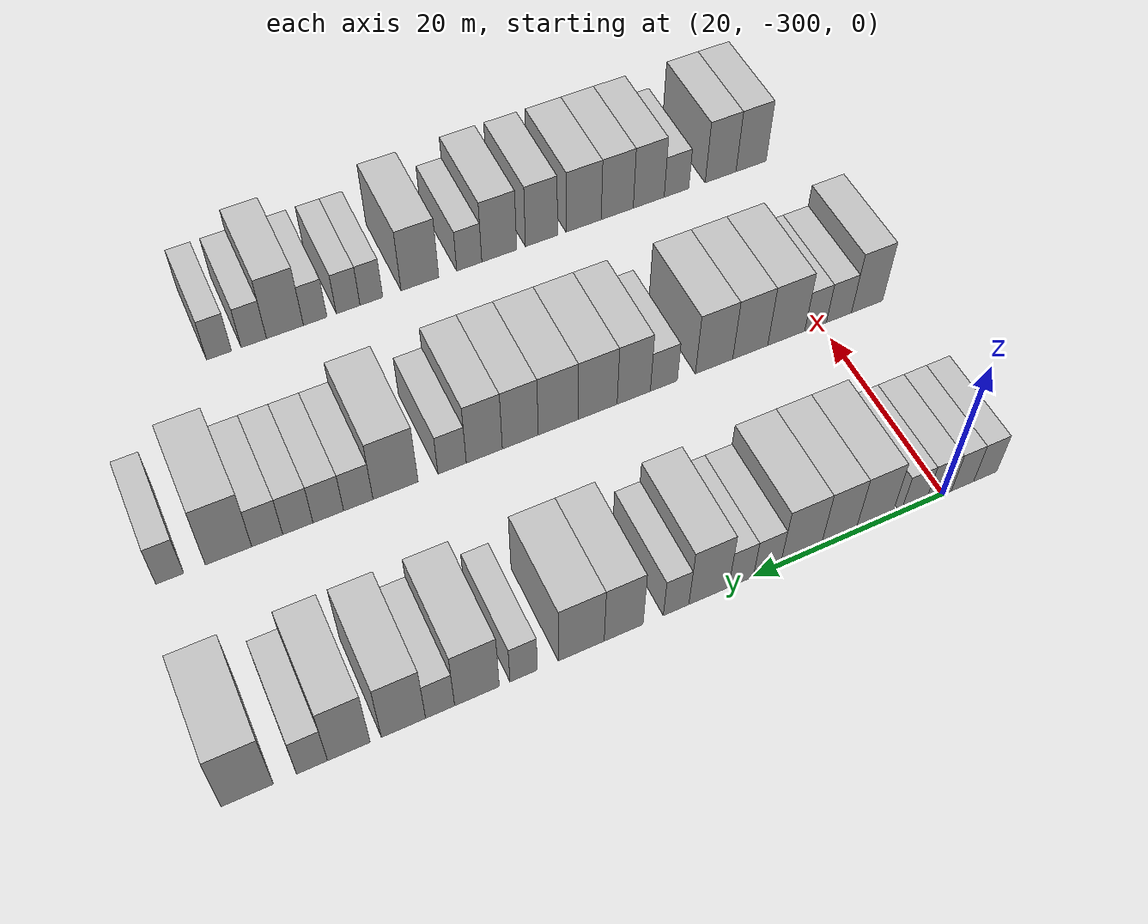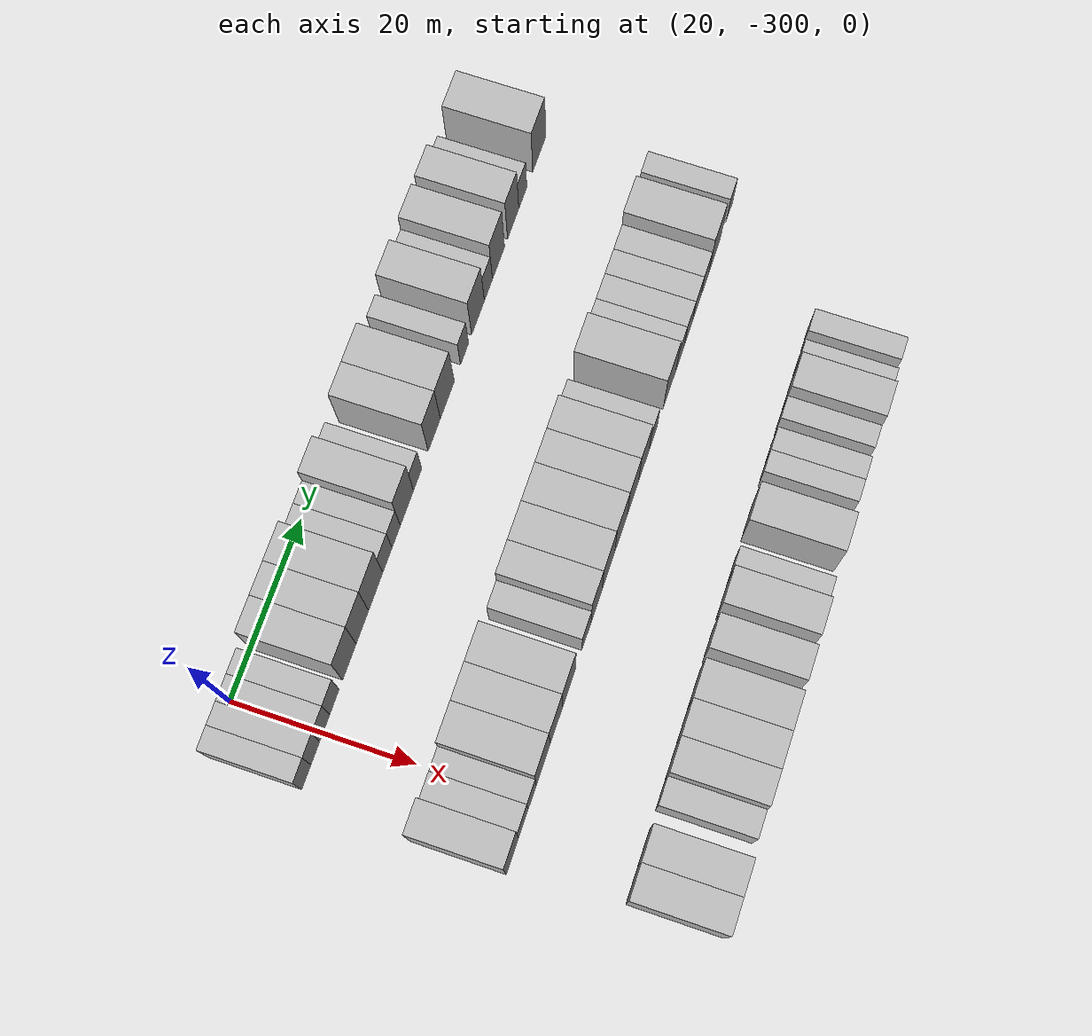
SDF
<sdf version="1.6">
 <world name="default">
  <model name="building_20">
   <static>1</static>
   <pose>25.0000 -304.6713 0 0.000000 0.000000 0.000000</pose>
   <link name="link">
    <pose>0 0 3.00 0 0 0</pose>
    <collision name="collision"><geometry><box><size>10.0000 2.5797 6.0000</size></box></geometry></collision>
    <visual name="visual">
     <cast_shadows>0</cast_shadows>
     <geometry><box><size>10.0000 2.5797 6.0000</size></box></geometry>
     <material>
      <script>
       <uri>model://HANNAS_wall/materials/scripts</uri>
       <uri>model://HANNAS_wall/materials/textures</uri>
       <name>vrc/HANNAS_wall</name>
      </script>
     </material>
    </visual>
   </link>
  </model>
  <model name="building_21">
   <static>1</static>
   <pose>25.0000 -302.1477 0 0.000000 0.000000 0.000000</pose>
   <link name="link">
    <pose>0 0 3.00 0 0 0</pose>
    <collision name="collision"><geometry><box><size>10.0000 2.4675 6.0000</size></box></geometry></collision>
    <visual name="visual">
     <cast_shadows>0</cast_shadows>
     <geometry><box><size>10.0000 2.4675 6.0000</size></box></geometry>
     <material>
      <script>
       <uri>model://HANNAS_wall/materials/scripts</uri>
       <uri>model://HANNAS_wall/materials/textures</uri>
       <name>vrc/HANNAS_wall</name>
      </script>
     </material>
    </visual>
   </link>
  </model>
  <model name="building_22">
   <static>1</static>
   <pose>25.0000 -299.4982 0 0.000000 0.000000 0.000000</pose>
   <link name="link">
    <pose>0 0 3.00 0 0 0</pose>
    <collision name="collision"><geometry><box><size>10.0000 2.8315 6.0000</size></box></geometry></collision>
    <visual name="visual">
     <cast_shadows>0</cast_shadows>
     <geometry><box><size>10.0000 2.8315 6.0000</size></box></geometry>
     <material>
      <script>
       <uri>model://HANNAS_wall/materials/scripts</uri>
       <uri>model://HANNAS_wall/materials/textures</uri>
       <name>vrc/HANNAS_wall</name>
      </script>
     </material>
    </visual>
   </link>
  </model>
  <model name="building_23">
   <static>1</static>
   <pose>25.0000 -296.7344 0 0.000000 0.000000 0.000000</pose>
   <link name="link">
    <pose>0 0 3.00 0 0 0</pose>
    <collision name="collision"><geometry><box><size>10.0000 2.6960 6.0000</size></box></geometry></collision>
    <visual name="visual">
     <cast_shadows>0</cast_shadows>
     <geometry><box><size>10.0000 2.6960 6.0000</size></box></geometry>
     <material>
      <script>
       <uri>model://HANNAS_wall/materials/scripts</uri>
       <uri>model://HANNAS_wall/materials/textures</uri>
       <name>vrc/HANNAS_wall</name>
      </script>
     </material>
    </visual>
   </link>
  </model>
  <model name="building_24">
   <static>1</static>
   <pose>25.0000 -292.4410 0 0.000000 0.000000 0.000000</pose>
   <link name="link">
    <pose>0 0 4.50 0 0 0</pose>
    <collision name="collision"><geometry><box><size>10.0000 3.8909 9.0000</size></box></geometry></collision>
    <visual name="visual">
     <cast_shadows>0</cast_shadows>
     <geometry><box><size>10.0000 3.8909 9.0000</size></box></geometry>
     <material>
      <script>
       <uri>model://HANNAS_wall/materials/scripts</uri>
       <uri>model://HANNAS_wall/materials/textures</uri>
       <name>vrc/HANNAS_wall</name>
      </script>
     </material>
    </visual>
   </link>
  </model>
  <model name="building_25">
   <static>1</static>
   <pose>25.0000 -288.6724 0 0.000000 0.000000 0.000000</pose>
   <link name="link">
    <pose>0 0 4.50 0 0 0</pose>
    <collision name="collision"><geometry><box><size>10.0000 3.6461 9.0000</size></box></geometry></collision>
    <visual name="visual">
     <cast_shadows>0</cast_shadows>
     <geometry><box><size>10.0000 3.6461 9.0000</size></box></geometry>
     <material>
      <script>
       <uri>model://HANNAS_wall/materials/scripts</uri>
       <uri>model://HANNAS_wall/materials/textures</uri>
       <name>vrc/HANNAS_wall</name>
      </script>
     </material>
    </visual>
   </link>
  </model>
  <model name="building_26">
   <static>1</static>
   <pose>25.0000 -284.7584 0 0.000000 0.000000 0.000000</pose>
   <link name="link">
    <pose>0 0 4.50 0 0 0</pose>
    <collision name="collision"><geometry><box><size>10.0000 4.1821 9.0000</size></box></geometry></collision>
    <visual name="visual">
     <cast_shadows>0</cast_shadows>
     <geometry><box><size>10.0000 4.1821 9.0000</size></box></geometry>
     <material>
      <script>
       <uri>model://HANNAS_wall/materials/scripts</uri>
       <uri>model://HANNAS_wall/materials/textures</uri>
       <name>vrc/HANNAS_wall</name>
      </script>
     </material>
    </visual>
   </link>
  </model>
  <model name="building_27">
   <static>1</static>
   <pose>25.0000 -281.2777 0 0.000000 0.000000 0.000000</pose>
   <link name="link">
    <pose>0 0 3.00 0 0 0</pose>
    <collision name="collision"><geometry><box><size>10.0000 2.7793 6.0000</size></box></geometry></collision>
    <visual name="visual">
     <cast_shadows>0</cast_shadows>
     <geometry><box><size>10.0000 2.7793 6.0000</size></box></geometry>
     <material>
      <script>
       <uri>model://HANNAS_wall/materials/scripts</uri>
       <uri>model://HANNAS_wall/materials/textures</uri>
       <name>vrc/HANNAS_wall</name>
      </script>
     </material>
    </visual>
   </link>
  </model>
  <model name="building_28">
   <static>1</static>
   <pose>25.0000 -278.6364 0 0.000000 0.000000 0.000000</pose>
   <link name="link">
    <pose>0 0 3.00 0 0 0</pose>
    <collision name="collision"><geometry><box><size>10.0000 2.5034 6.0000</size></box></geometry></collision>
    <visual name="visual">
     <cast_shadows>0</cast_shadows>
     <geometry><box><size>10.0000 2.5034 6.0000</size></box></geometry>
     <material>
      <script>
       <uri>model://HANNAS_wall/materials/scripts</uri>
       <uri>model://HANNAS_wall/materials/textures</uri>
       <name>vrc/HANNAS_wall</name>
      </script>
     </material>
    </visual>
   </link>
  </model>
  <model name="building_29">
   <static>1</static>
   <pose>25.0000 -275.3839 0 0.000000 0.000000 0.000000</pose>
   <link name="link">
    <pose>0 0 4.50 0 0 0</pose>
    <collision name="collision"><geometry><box><size>10.0000 4.0015 9.0000</size></box></geometry></collision>
    <visual name="visual">
     <cast_shadows>0</cast_shadows>
     <geometry><box><size>10.0000 4.0015 9.0000</size></box></geometry>
     <material>
      <script>
       <uri>model://HANNAS_wall/materials/scripts</uri>
       <uri>model://HANNAS_wall/materials/textures</uri>
       <name>vrc/HANNAS_wall</name>
      </script>
     </material>
    </visual>
   </link>
  </model>
  <model name="building_30">
   <static>1</static>
   <pose>25.0000 -272.1171 0 0.000000 0.000000 0.000000</pose>
   <link name="link">
    <pose>0 0 3.00 0 0 0</pose>
    <collision name="collision"><geometry><box><size>10.0000 2.5321 6.0000</size></box></geometry></collision>
    <visual name="visual">
     <cast_shadows>0</cast_shadows>
     <geometry><box><size>10.0000 2.5321 6.0000</size></box></geometry>
     <material>
      <script>
       <uri>model://HANNAS_wall/materials/scripts</uri>
       <uri>model://HANNAS_wall/materials/textures</uri>
       <name>vrc/HANNAS_wall</name>
      </script>
     </material>
    </visual>
   </link>
  </model>
  <model name="building_31">
   <static>1</static>
   <pose>25.0000 -266.9588 0 0.000000 0.000000 0.000000</pose>
   <link name="link">
    <pose>0 0 4.50 0 0 0</pose>
    <collision name="collision"><geometry><box><size>10.0000 3.7845 9.0000</size></box></geometry></collision>
    <visual name="visual">
     <cast_shadows>0</cast_shadows>
     <geometry><box><size>10.0000 3.7845 9.0000</size></box></geometry>
     <material>
      <script>
       <uri>model://HANNAS_wall/materials/scripts</uri>
       <uri>model://HANNAS_wall/materials/textures</uri>
       <name>vrc/HANNAS_wall</name>
      </script>
     </material>
    </visual>
   </link>
  </model>
  <model name="building_32">
   <static>1</static>
   <pose>25.0000 -262.8703 0 0.000000 0.000000 0.000000</pose>
   <link name="link">
    <pose>0 0 4.50 0 0 0</pose>
    <collision name="collision"><geometry><box><size>10.0000 4.3926 9.0000</size></box></geometry></collision>
    <visual name="visual">
     <cast_shadows>0</cast_shadows>
     <geometry><box><size>10.0000 4.3926 9.0000</size></box></geometry>
     <material>
      <script>
       <uri>model://HANNAS_wall/materials/scripts</uri>
       <uri>model://HANNAS_wall/materials/textures</uri>
       <name>vrc/HANNAS_wall</name>
      </script>
     </material>
    </visual>
   </link>
  </model>
  <model name="building_33">
   <static>1</static>
   <pose>25.0000 -257.3927 0 0.000000 0.000000 0.000000</pose>
   <link name="link">
    <pose>0 0 3.00 0 0 0</pose>
    <collision name="collision"><geometry><box><size>10.0000 2.5626 6.0000</size></box></geometry></collision>
    <visual name="visual">
     <cast_shadows>0</cast_shadows>
     <geometry><box><size>10.0000 2.5626 6.0000</size></box></geometry>
     <material>
      <script>
       <uri>model://HANNAS_wall/materials/scripts</uri>
       <uri>model://HANNAS_wall/materials/textures</uri>
       <name>vrc/HANNAS_wall</name>
      </script>
     </material>
    </visual>
   </link>
  </model>
  <model name="building_34">
   <static>1</static>
   <pose>25.0000 -253.0505 0 0.000000 0.000000 0.000000</pose>
   <link name="link">
    <pose>0 0 4.50 0 0 0</pose>
    <collision name="collision"><geometry><box><size>10.0000 4.1217 9.0000</size></box></geometry></collision>
    <visual name="visual">
     <cast_shadows>0</cast_shadows>
     <geometry><box><size>10.0000 4.1217 9.0000</size></box></geometry>
     <material>
      <script>
       <uri>model://HANNAS_wall/materials/scripts</uri>
       <uri>model://HANNAS_wall/materials/textures</uri>
       <name>vrc/HANNAS_wall</name>
      </script>
     </material>
    </visual>
   </link>
  </model>
  <model name="building_35">
   <static>1</static>
   <pose>25.0000 -249.6613 0 0.000000 0.000000 0.000000</pose>
   <link name="link">
    <pose>0 0 3.00 0 0 0</pose>
    <collision name="collision"><geometry><box><size>10.0000 2.6567 6.0000</size></box></geometry></collision>
    <visual name="visual">
     <cast_shadows>0</cast_shadows>
     <geometry><box><size>10.0000 2.6567 6.0000</size></box></geometry>
     <material>
      <script>
       <uri>model://HANNAS_wall/materials/scripts</uri>
       <uri>model://HANNAS_wall/materials/textures</uri>
       <name>vrc/HANNAS_wall</name>
      </script>
     </material>
    </visual>
   </link>
  </model>
  <model name="building_36">
   <static>1</static>
   <pose>25.0000 -246.3423 0 0.000000 0.000000 0.000000</pose>
   <link name="link">
    <pose>0 0 4.50 0 0 0</pose>
    <collision name="collision"><geometry><box><size>10.0000 3.9813 9.0000</size></box></geometry></collision>
    <visual name="visual">
     <cast_shadows>0</cast_shadows>
     <geometry><box><size>10.0000 3.9813 9.0000</size></box></geometry>
     <material>
      <script>
       <uri>model://HANNAS_wall/materials/scripts</uri>
       <uri>model://HANNAS_wall/materials/textures</uri>
       <name>vrc/HANNAS_wall</name>
      </script>
     </material>
    </visual>
   </link>
  </model>
  <model name="building_37">
   <static>1</static>
   <pose>25.0000 -241.4669 0 0.000000 0.000000 0.000000</pose>
   <link name="link">
    <pose>0 0 4.50 0 0 0</pose>
    <collision name="collision"><geometry><box><size>10.0000 3.7695 9.0000</size></box></geometry></collision>
    <visual name="visual">
     <cast_shadows>0</cast_shadows>
     <geometry><box><size>10.0000 3.7695 9.0000</size></box></geometry>
     <material>
      <script>
       <uri>model://HANNAS_wall/materials/scripts</uri>
       <uri>model://HANNAS_wall/materials/textures</uri>
       <name>vrc/HANNAS_wall</name>
      </script>
     </material>
    </visual>
   </link>
  </model>
  <model name="building_38">
   <static>1</static>
   <pose>25.0000 -238.2289 0 0.000000 0.000000 0.000000</pose>
   <link name="link">
    <pose>0 0 3.00 0 0 0</pose>
    <collision name="collision"><geometry><box><size>10.0000 2.7064 6.0000</size></box></geometry></collision>
    <visual name="visual">
     <cast_shadows>0</cast_shadows>
     <geometry><box><size>10.0000 2.7064 6.0000</size></box></geometry>
     <material>
      <script>
       <uri>model://HANNAS_wall/materials/scripts</uri>
       <uri>model://HANNAS_wall/materials/textures</uri>
       <name>vrc/HANNAS_wall</name>
      </script>
     </material>
    </visual>
   </link>
  </model>
  <model name="building_39">
   <static>1</static>
   <pose>25.0000 -232.6431 0 0.000000 0.000000 0.000000</pose>
   <link name="link">
    <pose>0 0 4.50 0 0 0</pose>
    <collision name="collision"><geometry><box><size>10.0000 4.4654 9.0000</size></box></geometry></collision>
    <visual name="visual">
     <cast_shadows>0</cast_shadows>
     <geometry><box><size>10.0000 4.4654 9.0000</size></box></geometry>
     <material>
      <script>
       <uri>model://HANNAS_wall/materials/scripts</uri>
       <uri>model://HANNAS_wall/materials/textures</uri>
       <name>vrc/HANNAS_wall</name>
      </script>
     </material>
    </visual>
   </link>
  </model>
  <model name="building_199">
   <static>1</static>
   <pose>47.0000 -305.4321 0 0.000000 0.000000 0.000000</pose>
   <link name="link">
    <pose>0 0 4.50 0 0 0</pose>
    <collision name="collision"><geometry><box><size>10.0000 3.6798 9.0000</size></box></geometry></collision>
    <visual name="visual">
     <cast_shadows>0</cast_shadows>
     <geometry><box><size>10.0000 3.6798 9.0000</size></box></geometry>
     <material>
      <script>
       <uri>model://HANNAS_wall/materials/scripts</uri>
       <uri>model://HANNAS_wall/materials/textures</uri>
       <name>vrc/HANNAS_wall</name>
      </script>
     </material>
    </visual>
   </link>
  </model>
  <model name="building_200">
   <static>1</static>
   <pose>47.0000 -302.1276 0 0.000000 0.000000 0.000000</pose>
   <link name="link">
    <pose>0 0 3.00 0 0 0</pose>
    <collision name="collision"><geometry><box><size>10.0000 2.9292 6.0000</size></box></geometry></collision>
    <visual name="visual">
     <cast_shadows>0</cast_shadows>
     <geometry><box><size>10.0000 2.9292 6.0000</size></box></geometry>
     <material>
      <script>
       <uri>model://HANNAS_wall/materials/scripts</uri>
       <uri>model://HANNAS_wall/materials/textures</uri>
       <name>vrc/HANNAS_wall</name>
      </script>
     </material>
    </visual>
   </link>
  </model>
  <model name="building_201">
   <static>1</static>
   <pose>47.0000 -299.4100 0 0.000000 0.000000 0.000000</pose>
   <link name="link">
    <pose>0 0 3.00 0 0 0</pose>
    <collision name="collision"><geometry><box><size>10.0000 2.5062 6.0000</size></box></geometry></collision>
    <visual name="visual">
     <cast_shadows>0</cast_shadows>
     <geometry><box><size>10.0000 2.5062 6.0000</size></box></geometry>
     <material>
      <script>
       <uri>model://HANNAS_wall/materials/scripts</uri>
       <uri>model://HANNAS_wall/materials/textures</uri>
       <name>vrc/HANNAS_wall</name>
      </script>
     </material>
    </visual>
   </link>
  </model>
  <model name="building_202">
   <static>1</static>
   <pose>47.0000 -296.0349 0 0.000000 0.000000 0.000000</pose>
   <link name="link">
    <pose>0 0 4.50 0 0 0</pose>
    <collision name="collision"><geometry><box><size>10.0000 4.2441 9.0000</size></box></geometry></collision>
    <visual name="visual">
     <cast_shadows>0</cast_shadows>
     <geometry><box><size>10.0000 4.2441 9.0000</size></box></geometry>
     <material>
      <script>
       <uri>model://HANNAS_wall/materials/scripts</uri>
       <uri>model://HANNAS_wall/materials/textures</uri>
       <name>vrc/HANNAS_wall</name>
      </script>
     </material>
    </visual>
   </link>
  </model>
  <model name="building_203">
   <static>1</static>
   <pose>47.0000 -291.9326 0 0.000000 0.000000 0.000000</pose>
   <link name="link">
    <pose>0 0 4.50 0 0 0</pose>
    <collision name="collision"><geometry><box><size>10.0000 3.9604 9.0000</size></box></geometry></collision>
    <visual name="visual">
     <cast_shadows>0</cast_shadows>
     <geometry><box><size>10.0000 3.9604 9.0000</size></box></geometry>
     <material>
      <script>
       <uri>model://HANNAS_wall/materials/scripts</uri>
       <uri>model://HANNAS_wall/materials/textures</uri>
       <name>vrc/HANNAS_wall</name>
      </script>
     </material>
    </visual>
   </link>
  </model>
  <model name="building_204">
   <static>1</static>
   <pose>47.0000 -287.8697 0 0.000000 0.000000 0.000000</pose>
   <link name="link">
    <pose>0 0 4.50 0 0 0</pose>
    <collision name="collision"><geometry><box><size>10.0000 4.1654 9.0000</size></box></geometry></collision>
    <visual name="visual">
     <cast_shadows>0</cast_shadows>
     <geometry><box><size>10.0000 4.1654 9.0000</size></box></geometry>
     <material>
      <script>
       <uri>model://HANNAS_wall/materials/scripts</uri>
       <uri>model://HANNAS_wall/materials/textures</uri>
       <name>vrc/HANNAS_wall</name>
      </script>
     </material>
    </visual>
   </link>
  </model>
  <model name="building_205">
   <static>1</static>
   <pose>47.0000 -282.3110 0 0.000000 0.000000 0.000000</pose>
   <link name="link">
    <pose>0 0 3.00 0 0 0</pose>
    <collision name="collision"><geometry><box><size>10.0000 2.9521 6.0000</size></box></geometry></collision>
    <visual name="visual">
     <cast_shadows>0</cast_shadows>
     <geometry><box><size>10.0000 2.9521 6.0000</size></box></geometry>
     <material>
      <script>
       <uri>model://HANNAS_wall/materials/scripts</uri>
       <uri>model://HANNAS_wall/materials/textures</uri>
       <name>vrc/HANNAS_wall</name>
      </script>
     </material>
    </visual>
   </link>
  </model>
  <model name="building_206">
   <static>1</static>
   <pose>47.0000 -279.0317 0 0.000000 0.000000 0.000000</pose>
   <link name="link">
    <pose>0 0 4.50 0 0 0</pose>
    <collision name="collision"><geometry><box><size>10.0000 3.6065 9.0000</size></box></geometry></collision>
    <visual name="visual">
     <cast_shadows>0</cast_shadows>
     <geometry><box><size>10.0000 3.6065 9.0000</size></box></geometry>
     <material>
      <script>
       <uri>model://HANNAS_wall/materials/scripts</uri>
       <uri>model://HANNAS_wall/materials/textures</uri>
       <name>vrc/HANNAS_wall</name>
      </script>
     </material>
    </visual>
   </link>
  </model>
  <model name="building_207">
   <static>1</static>
   <pose>47.0000 -275.1350 0 0.000000 0.000000 0.000000</pose>
   <link name="link">
    <pose>0 0 4.50 0 0 0</pose>
    <collision name="collision"><geometry><box><size>10.0000 4.1869 9.0000</size></box></geometry></collision>
    <visual name="visual">
     <cast_shadows>0</cast_shadows>
     <geometry><box><size>10.0000 4.1869 9.0000</size></box></geometry>
     <material>
      <script>
       <uri>model://HANNAS_wall/materials/scripts</uri>
       <uri>model://HANNAS_wall/materials/textures</uri>
       <name>vrc/HANNAS_wall</name>
      </script>
     </material>
    </visual>
   </link>
  </model>
  <model name="building_208">
   <static>1</static>
   <pose>47.0000 -270.9492 0 0.000000 0.000000 0.000000</pose>
   <link name="link">
    <pose>0 0 4.50 0 0 0</pose>
    <collision name="collision"><geometry><box><size>10.0000 4.1847 9.0000</size></box></geometry></collision>
    <visual name="visual">
     <cast_shadows>0</cast_shadows>
     <geometry><box><size>10.0000 4.1847 9.0000</size></box></geometry>
     <material>
      <script>
       <uri>model://HANNAS_wall/materials/scripts</uri>
       <uri>model://HANNAS_wall/materials/textures</uri>
       <name>vrc/HANNAS_wall</name>
      </script>
     </material>
    </visual>
   </link>
  </model>
  <model name="building_209">
   <static>1</static>
   <pose>47.0000 -266.9945 0 0.000000 0.000000 0.000000</pose>
   <link name="link">
    <pose>0 0 4.50 0 0 0</pose>
    <collision name="collision"><geometry><box><size>10.0000 3.7248 9.0000</size></box></geometry></collision>
    <visual name="visual">
     <cast_shadows>0</cast_shadows>
     <geometry><box><size>10.0000 3.7248 9.0000</size></box></geometry>
     <material>
      <script>
       <uri>model://HANNAS_wall/materials/scripts</uri>
       <uri>model://HANNAS_wall/materials/textures</uri>
       <name>vrc/HANNAS_wall</name>
      </script>
     </material>
    </visual>
   </link>
  </model>
  <model name="building_210">
   <static>1</static>
   <pose>47.0000 -263.2821 0 0.000000 0.000000 0.000000</pose>
   <link name="link">
    <pose>0 0 4.50 0 0 0</pose>
    <collision name="collision"><geometry><box><size>10.0000 3.7000 9.0000</size></box></geometry></collision>
    <visual name="visual">
     <cast_shadows>0</cast_shadows>
     <geometry><box><size>10.0000 3.7000 9.0000</size></box></geometry>
     <material>
      <script>
       <uri>model://HANNAS_wall/materials/scripts</uri>
       <uri>model://HANNAS_wall/materials/textures</uri>
       <name>vrc/HANNAS_wall</name>
      </script>
     </material>
    </visual>
   </link>
  </model>
  <model name="building_211">
   <static>1</static>
   <pose>47.0000 -259.9927 0 0.000000 0.000000 0.000000</pose>
   <link name="link">
    <pose>0 0 3.00 0 0 0</pose>
    <collision name="collision"><geometry><box><size>10.0000 2.8788 6.0000</size></box></geometry></collision>
    <visual name="visual">
     <cast_shadows>0</cast_shadows>
     <geometry><box><size>10.0000 2.8788 6.0000</size></box></geometry>
     <material>
      <script>
       <uri>model://HANNAS_wall/materials/scripts</uri>
       <uri>model://HANNAS_wall/materials/textures</uri>
       <name>vrc/HANNAS_wall</name>
      </script>
     </material>
    </visual>
   </link>
  </model>
  <model name="building_212">
   <static>1</static>
   <pose>47.0000 -254.3141 0 0.000000 0.000000 0.000000</pose>
   <link name="link">
    <pose>0 0 4.50 0 0 0</pose>
    <collision name="collision"><geometry><box><size>10.0000 4.4783 9.0000</size></box></geometry></collision>
    <visual name="visual">
     <cast_shadows>0</cast_shadows>
     <geometry><box><size>10.0000 4.4783 9.0000</size></box></geometry>
     <material>
      <script>
       <uri>model://HANNAS_wall/materials/scripts</uri>
       <uri>model://HANNAS_wall/materials/textures</uri>
       <name>vrc/HANNAS_wall</name>
      </script>
     </material>
    </visual>
   </link>
  </model>
  <model name="building_213">
   <static>1</static>
   <pose>47.0000 -250.6314 0 0.000000 0.000000 0.000000</pose>
   <link name="link">
    <pose>0 0 3.00 0 0 0</pose>
    <collision name="collision"><geometry><box><size>10.0000 2.8870 6.0000</size></box></geometry></collision>
    <visual name="visual">
     <cast_shadows>0</cast_shadows>
     <geometry><box><size>10.0000 2.8870 6.0000</size></box></geometry>
     <material>
      <script>
       <uri>model://HANNAS_wall/materials/scripts</uri>
       <uri>model://HANNAS_wall/materials/textures</uri>
       <name>vrc/HANNAS_wall</name>
      </script>
     </material>
    </visual>
   </link>
  </model>
  <model name="building_214">
   <static>1</static>
   <pose>47.0000 -247.6983 0 0.000000 0.000000 0.000000</pose>
   <link name="link">
    <pose>0 0 3.00 0 0 0</pose>
    <collision name="collision"><geometry><box><size>10.0000 2.9792 6.0000</size></box></geometry></collision>
    <visual name="visual">
     <cast_shadows>0</cast_shadows>
     <geometry><box><size>10.0000 2.9792 6.0000</size></box></geometry>
     <material>
      <script>
       <uri>model://HANNAS_wall/materials/scripts</uri>
       <uri>model://HANNAS_wall/materials/textures</uri>
       <name>vrc/HANNAS_wall</name>
      </script>
     </material>
    </visual>
   </link>
  </model>
  <model name="building_215">
   <static>1</static>
   <pose>47.0000 -244.7520 0 0.000000 0.000000 0.000000</pose>
   <link name="link">
    <pose>0 0 3.00 0 0 0</pose>
    <collision name="collision"><geometry><box><size>10.0000 2.9134 6.0000</size></box></geometry></collision>
    <visual name="visual">
     <cast_shadows>0</cast_shadows>
     <geometry><box><size>10.0000 2.9134 6.0000</size></box></geometry>
     <material>
      <script>
       <uri>model://HANNAS_wall/materials/scripts</uri>
       <uri>model://HANNAS_wall/materials/textures</uri>
       <name>vrc/HANNAS_wall</name>
      </script>
     </material>
    </visual>
   </link>
  </model>
  <model name="building_216">
   <static>1</static>
   <pose>47.0000 -241.8225 0 0.000000 0.000000 0.000000</pose>
   <link name="link">
    <pose>0 0 3.00 0 0 0</pose>
    <collision name="collision"><geometry><box><size>10.0000 2.9456 6.0000</size></box></geometry></collision>
    <visual name="visual">
     <cast_shadows>0</cast_shadows>
     <geometry><box><size>10.0000 2.9456 6.0000</size></box></geometry>
     <material>
      <script>
       <uri>model://HANNAS_wall/materials/scripts</uri>
       <uri>model://HANNAS_wall/materials/textures</uri>
       <name>vrc/HANNAS_wall</name>
      </script>
     </material>
    </visual>
   </link>
  </model>
  <model name="building_217">
   <static>1</static>
   <pose>47.0000 -238.1633 0 0.000000 0.000000 0.000000</pose>
   <link name="link">
    <pose>0 0 4.50 0 0 0</pose>
    <collision name="collision"><geometry><box><size>10.0000 4.3729 9.0000</size></box></geometry></collision>
    <visual name="visual">
     <cast_shadows>0</cast_shadows>
     <geometry><box><size>10.0000 4.3729 9.0000</size></box></geometry>
     <material>
      <script>
       <uri>model://HANNAS_wall/materials/scripts</uri>
       <uri>model://HANNAS_wall/materials/textures</uri>
       <name>vrc/HANNAS_wall</name>
      </script>
     </material>
    </visual>
   </link>
  </model>
  <model name="building_218">
   <static>1</static>
   <pose>47.0000 -232.6854 0 0.000000 0.000000 0.000000</pose>
   <link name="link">
    <pose>0 0 3.00 0 0 0</pose>
    <collision name="collision"><geometry><box><size>10.0000 2.5828 6.0000</size></box></geometry></collision>
    <visual name="visual">
     <cast_shadows>0</cast_shadows>
     <geometry><box><size>10.0000 2.5828 6.0000</size></box></geometry>
     <material>
      <script>
       <uri>model://HANNAS_wall/materials/scripts</uri>
       <uri>model://HANNAS_wall/materials/textures</uri>
       <name>vrc/HANNAS_wall</name>
      </script>
     </material>
    </visual>
   </link>
  </model>
  <model name="building_383">
   <static>1</static>
   <pose>69.0000 -304.3740 0 0.000000 0.000000 0.000000</pose>
   <link name="link">
    <pose>0 0 4.50 0 0 0</pose>
    <collision name="collision"><geometry><box><size>10.0000 3.7375 9.0000</size></box></geometry></collision>
    <visual name="visual">
     <cast_shadows>0</cast_shadows>
     <geometry><box><size>10.0000 3.7375 9.0000</size></box></geometry>
     <material>
      <script>
       <uri>model://HANNAS_wall/materials/scripts</uri>
       <uri>model://HANNAS_wall/materials/textures</uri>
       <name>vrc/HANNAS_wall</name>
      </script>
     </material>
    </visual>
   </link>
  </model>
  <model name="building_384">
   <static>1</static>
   <pose>69.0000 -300.6145 0 0.000000 0.000000 0.000000</pose>
   <link name="link">
    <pose>0 0 4.50 0 0 0</pose>
    <collision name="collision"><geometry><box><size>10.0000 3.7815 9.0000</size></box></geometry></collision>
    <visual name="visual">
     <cast_shadows>0</cast_shadows>
     <geometry><box><size>10.0000 3.7815 9.0000</size></box></geometry>
     <material>
      <script>
       <uri>model://HANNAS_wall/materials/scripts</uri>
       <uri>model://HANNAS_wall/materials/textures</uri>
       <name>vrc/HANNAS_wall</name>
      </script>
     </material>
    </visual>
   </link>
  </model>
  <model name="building_385">
   <static>1</static>
   <pose>69.0000 -295.2391 0 0.000000 0.000000 0.000000</pose>
   <link name="link">
    <pose>0 0 3.00 0 0 0</pose>
    <collision name="collision"><geometry><box><size>10.0000 2.9692 6.0000</size></box></geometry></collision>
    <visual name="visual">
     <cast_shadows>0</cast_shadows>
     <geometry><box><size>10.0000 2.9692 6.0000</size></box></geometry>
     <material>
      <script>
       <uri>model://HANNAS_wall/materials/scripts</uri>
       <uri>model://HANNAS_wall/materials/textures</uri>
       <name>vrc/HANNAS_wall</name>
      </script>
     </material>
    </visual>
   </link>
  </model>
  <model name="building_386">
   <static>1</static>
   <pose>69.0000 -291.9053 0 0.000000 0.000000 0.000000</pose>
   <link name="link">
    <pose>0 0 4.50 0 0 0</pose>
    <collision name="collision"><geometry><box><size>10.0000 3.6983 9.0000</size></box></geometry></collision>
    <visual name="visual">
     <cast_shadows>0</cast_shadows>
     <geometry><box><size>10.0000 3.6983 9.0000</size></box></geometry>
     <material>
      <script>
       <uri>model://HANNAS_wall/materials/scripts</uri>
       <uri>model://HANNAS_wall/materials/textures</uri>
       <name>vrc/HANNAS_wall</name>
      </script>
     </material>
    </visual>
   </link>
  </model>
  <model name="building_387">
   <static>1</static>
   <pose>69.0000 -288.1603 0 0.000000 0.000000 0.000000</pose>
   <link name="link">
    <pose>0 0 4.50 0 0 0</pose>
    <collision name="collision"><geometry><box><size>10.0000 3.7918 9.0000</size></box></geometry></collision>
    <visual name="visual">
     <cast_shadows>0</cast_shadows>
     <geometry><box><size>10.0000 3.7918 9.0000</size></box></geometry>
     <material>
      <script>
       <uri>model://HANNAS_wall/materials/scripts</uri>
       <uri>model://HANNAS_wall/materials/textures</uri>
       <name>vrc/HANNAS_wall</name>
      </script>
     </material>
    </visual>
   </link>
  </model>
  <model name="building_388">
   <static>1</static>
   <pose>69.0000 -284.2148 0 0.000000 0.000000 0.000000</pose>
   <link name="link">
    <pose>0 0 4.50 0 0 0</pose>
    <collision name="collision"><geometry><box><size>10.0000 4.0993 9.0000</size></box></geometry></collision>
    <visual name="visual">
     <cast_shadows>0</cast_shadows>
     <geometry><box><size>10.0000 4.0993 9.0000</size></box></geometry>
     <material>
      <script>
       <uri>model://HANNAS_wall/materials/scripts</uri>
       <uri>model://HANNAS_wall/materials/textures</uri>
       <name>vrc/HANNAS_wall</name>
      </script>
     </material>
    </visual>
   </link>
  </model>
  <model name="building_389">
   <static>1</static>
   <pose>69.0000 -279.3297 0 0.000000 0.000000 0.000000</pose>
   <link name="link">
    <pose>0 0 4.50 0 0 0</pose>
    <collision name="collision"><geometry><box><size>10.0000 3.6708 9.0000</size></box></geometry></collision>
    <visual name="visual">
     <cast_shadows>0</cast_shadows>
     <geometry><box><size>10.0000 3.6708 9.0000</size></box></geometry>
     <material>
      <script>
       <uri>model://HANNAS_wall/materials/scripts</uri>
       <uri>model://HANNAS_wall/materials/textures</uri>
       <name>vrc/HANNAS_wall</name>
      </script>
     </material>
    </visual>
   </link>
  </model>
  <model name="building_390">
   <static>1</static>
   <pose>69.0000 -274.5213 0 0.000000 0.000000 0.000000</pose>
   <link name="link">
    <pose>0 0 4.50 0 0 0</pose>
    <collision name="collision"><geometry><box><size>10.0000 3.9461 9.0000</size></box></geometry></collision>
    <visual name="visual">
     <cast_shadows>0</cast_shadows>
     <geometry><box><size>10.0000 3.9461 9.0000</size></box></geometry>
     <material>
      <script>
       <uri>model://HANNAS_wall/materials/scripts</uri>
       <uri>model://HANNAS_wall/materials/textures</uri>
       <name>vrc/HANNAS_wall</name>
      </script>
     </material>
    </visual>
   </link>
  </model>
  <model name="building_391">
   <static>1</static>
   <pose>69.0000 -271.1417 0 0.000000 0.000000 0.000000</pose>
   <link name="link">
    <pose>0 0 3.00 0 0 0</pose>
    <collision name="collision"><geometry><box><size>10.0000 2.8131 6.0000</size></box></geometry></collision>
    <visual name="visual">
     <cast_shadows>0</cast_shadows>
     <geometry><box><size>10.0000 2.8131 6.0000</size></box></geometry>
     <material>
      <script>
       <uri>model://HANNAS_wall/materials/scripts</uri>
       <uri>model://HANNAS_wall/materials/textures</uri>
       <name>vrc/HANNAS_wall</name>
      </script>
     </material>
    </visual>
   </link>
  </model>
  <model name="building_392">
   <static>1</static>
   <pose>69.0000 -265.6592 0 0.000000 0.000000 0.000000</pose>
   <link name="link">
    <pose>0 0 4.50 0 0 0</pose>
    <collision name="collision"><geometry><box><size>10.0000 4.1519 9.0000</size></box></geometry></collision>
    <visual name="visual">
     <cast_shadows>0</cast_shadows>
     <geometry><box><size>10.0000 4.1519 9.0000</size></box></geometry>
     <material>
      <script>
       <uri>model://HANNAS_wall/materials/scripts</uri>
       <uri>model://HANNAS_wall/materials/textures</uri>
       <name>vrc/HANNAS_wall</name>
      </script>
     </material>
    </visual>
   </link>
  </model>
  <model name="building_393">
   <static>1</static>
   <pose>69.0000 -260.3542 0 0.000000 0.000000 0.000000</pose>
   <link name="link">
    <pose>0 0 3.00 0 0 0</pose>
    <collision name="collision"><geometry><box><size>10.0000 2.4581 6.0000</size></box></geometry></collision>
    <visual name="visual">
     <cast_shadows>0</cast_shadows>
     <geometry><box><size>10.0000 2.4581 6.0000</size></box></geometry>
     <material>
      <script>
       <uri>model://HANNAS_wall/materials/scripts</uri>
       <uri>model://HANNAS_wall/materials/textures</uri>
       <name>vrc/HANNAS_wall</name>
      </script>
     </material>
    </visual>
   </link>
  </model>
  <model name="building_394">
   <static>1</static>
   <pose>69.0000 -257.8500 0 0.000000 0.000000 0.000000</pose>
   <link name="link">
    <pose>0 0 3.00 0 0 0</pose>
    <collision name="collision"><geometry><box><size>10.0000 2.5502 6.0000</size></box></geometry></collision>
    <visual name="visual">
     <cast_shadows>0</cast_shadows>
     <geometry><box><size>10.0000 2.5502 6.0000</size></box></geometry>
     <material>
      <script>
       <uri>model://HANNAS_wall/materials/scripts</uri>
       <uri>model://HANNAS_wall/materials/textures</uri>
       <name>vrc/HANNAS_wall</name>
      </script>
     </material>
    </visual>
   </link>
  </model>
  <model name="building_395">
   <static>1</static>
   <pose>69.0000 -254.3251 0 0.000000 0.000000 0.000000</pose>
   <link name="link">
    <pose>0 0 3.00 0 0 0</pose>
    <collision name="collision"><geometry><box><size>10.0000 2.4996 6.0000</size></box></geometry></collision>
    <visual name="visual">
     <cast_shadows>0</cast_shadows>
     <geometry><box><size>10.0000 2.4996 6.0000</size></box></geometry>
     <material>
      <script>
       <uri>model://HANNAS_wall/materials/scripts</uri>
       <uri>model://HANNAS_wall/materials/textures</uri>
       <name>vrc/HANNAS_wall</name>
      </script>
     </material>
    </visual>
   </link>
  </model>
  <model name="building_396">
   <static>1</static>
   <pose>69.0000 -251.1338 0 0.000000 0.000000 0.000000</pose>
   <link name="link">
    <pose>0 0 4.50 0 0 0</pose>
    <collision name="collision"><geometry><box><size>10.0000 3.8831 9.0000</size></box></geometry></collision>
    <visual name="visual">
     <cast_shadows>0</cast_shadows>
     <geometry><box><size>10.0000 3.8831 9.0000</size></box></geometry>
     <material>
      <script>
       <uri>model://HANNAS_wall/materials/scripts</uri>
       <uri>model://HANNAS_wall/materials/textures</uri>
       <name>vrc/HANNAS_wall</name>
      </script>
     </material>
    </visual>
   </link>
  </model>
  <model name="building_397">
   <static>1</static>
   <pose>69.0000 -247.8791 0 0.000000 0.000000 0.000000</pose>
   <link name="link">
    <pose>0 0 3.00 0 0 0</pose>
    <collision name="collision"><geometry><box><size>10.0000 2.6263 6.0000</size></box></geometry></collision>
    <visual name="visual">
     <cast_shadows>0</cast_shadows>
     <geometry><box><size>10.0000 2.6263 6.0000</size></box></geometry>
     <material>
      <script>
       <uri>model://HANNAS_wall/materials/scripts</uri>
       <uri>model://HANNAS_wall/materials/textures</uri>
       <name>vrc/HANNAS_wall</name>
      </script>
     </material>
    </visual>
   </link>
  </model>
  <model name="building_398">
   <static>1</static>
   <pose>69.0000 -244.2798 0 0.000000 0.000000 0.000000</pose>
   <link name="link">
    <pose>0 0 3.00 0 0 0</pose>
    <collision name="collision"><geometry><box><size>10.0000 2.5722 6.0000</size></box></geometry></collision>
    <visual name="visual">
     <cast_shadows>0</cast_shadows>
     <geometry><box><size>10.0000 2.5722 6.0000</size></box></geometry>
     <material>
      <script>
       <uri>model://HANNAS_wall/materials/scripts</uri>
       <uri>model://HANNAS_wall/materials/textures</uri>
       <name>vrc/HANNAS_wall</name>
      </script>
     </material>
    </visual>
   </link>
  </model>
 </world>
</sdf>
